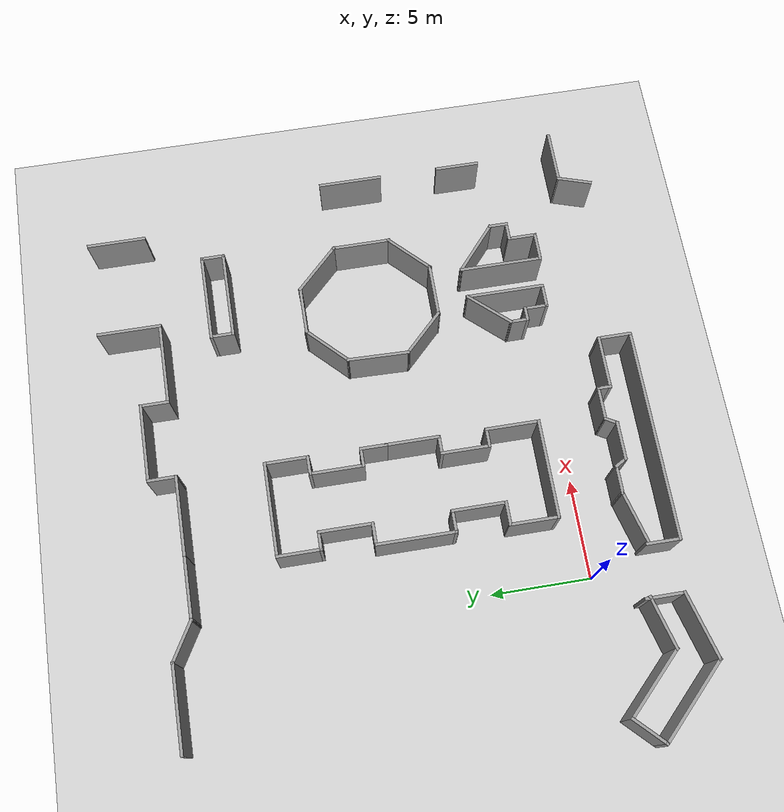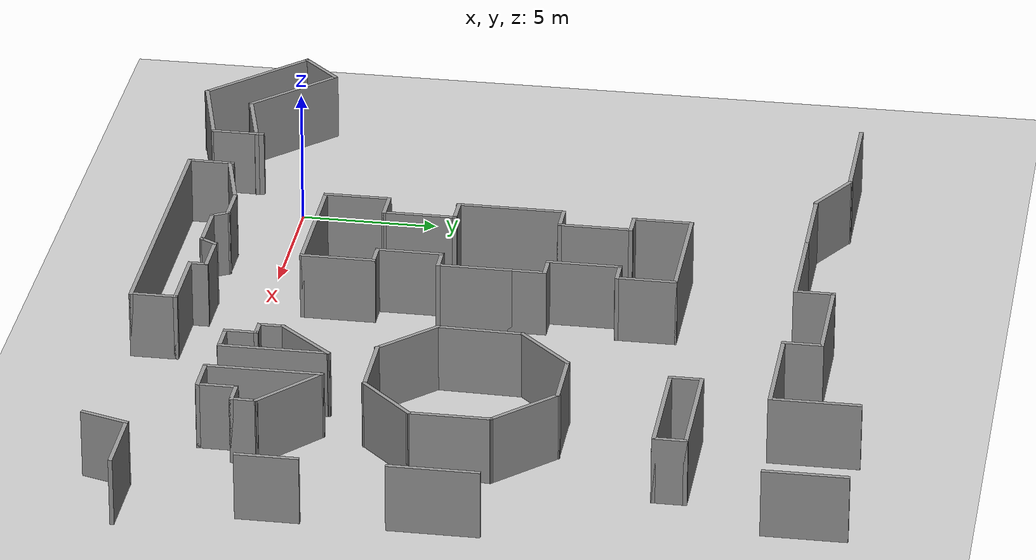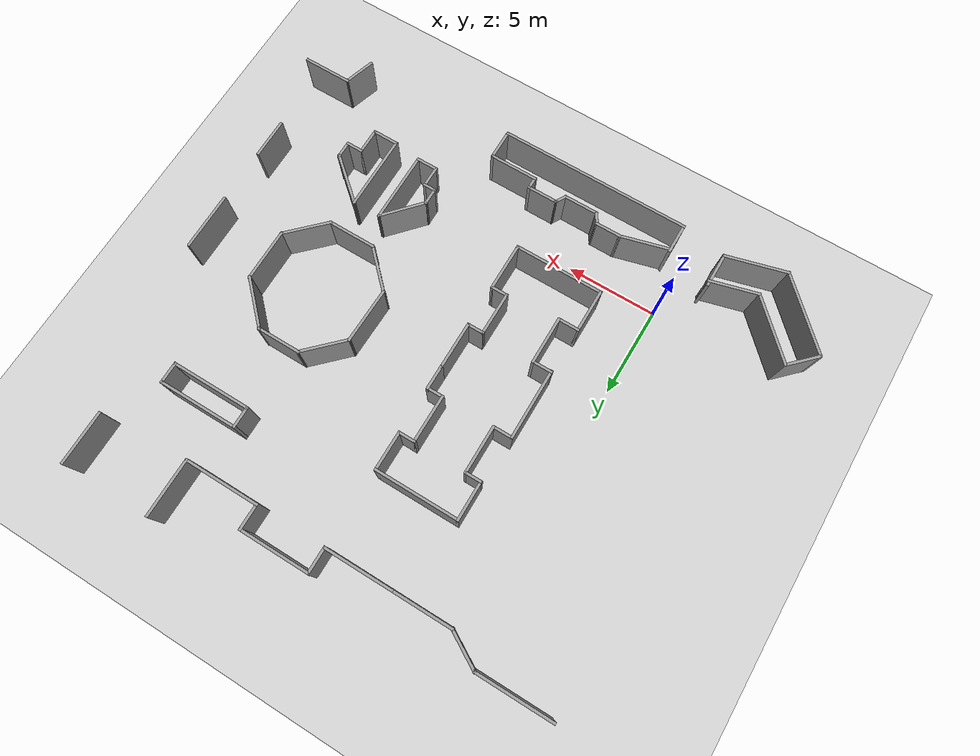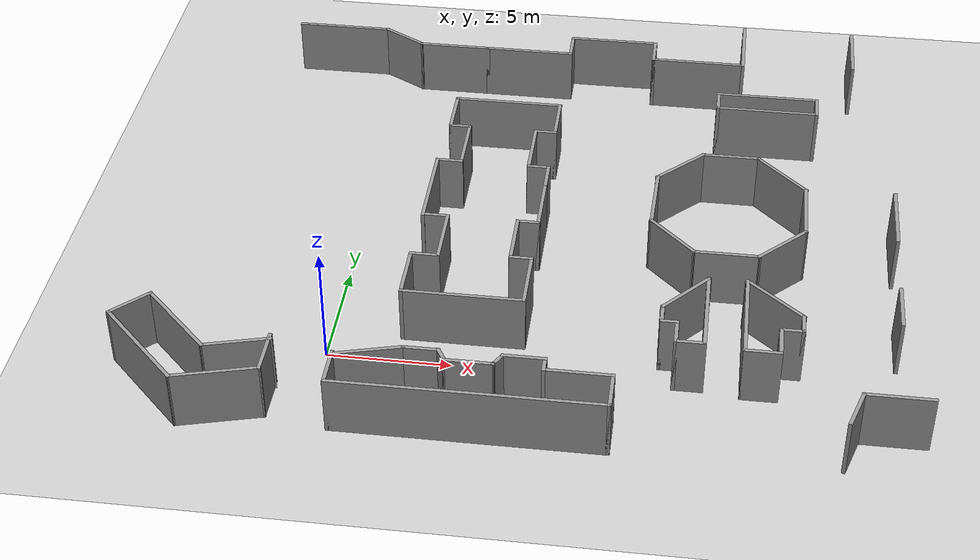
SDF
<sdf version="1.6">
 <world name="default">
  <model name="ground_plane">
   <static>1</static>
   <link name="link">
    <collision name="collision">
     <geometry><plane><normal>0 0 1</normal><size>100 100</size></plane></geometry>
     <surface><friction><ode><mu>100</mu><mu2>50</mu2></ode></friction></surface>
    </collision>
    <visual name="visual">
     <cast_shadows>0</cast_shadows>
     <geometry><plane><normal>0 0 1</normal><size>100 100</size></plane></geometry>
     <material>
      <script><uri>file://media/materials/scripts/gazebo.material</uri><name>Gazebo/Grey</name></script>
     </material>
    </visual>
   </link>
  </model>
  <model name="airport">
   <pose>30.6301 8.89323 0 0 -0 0</pose>
   <link name="Wall_10">
    <collision name="Wall_10_Collision">
     <geometry><box><size>5 0.15 2.5</size></box></geometry>
     <pose>0 0 1.25 0 -0 0</pose>
    </collision>
    <visual name="Wall_10_Visual">
     <pose>0 0 1.25 0 -0 0</pose>
     <geometry><box><size>5 0.15 2.5</size></box></geometry>
     <material>
      <script><uri>file://media/materials/scripts/gazebo.material</uri><name>Gazebo/Grey</name></script>
      <ambient>1 1 1 1</ambient>
     </material>
     <meta><layer>0</layer></meta>
    </visual>
    <pose>-25.3926 -7.51536 0 0 -0 3.14159</pose>
   </link>
   <link name="Wall_102">
    <collision name="Wall_102_Collision">
     <geometry><box><size>2.25 0.15 2.5</size></box></geometry>
     <pose>0 0 1.25 0 -0 0</pose>
    </collision>
    <visual name="Wall_102_Visual">
     <pose>0 0 1.25 0 -0 0</pose>
     <geometry><box><size>2.25 0.15 2.5</size></box></geometry>
     <material>
      <script><uri>file://media/materials/scripts/gazebo.material</uri><name>Gazebo/Grey</name></script>
      <ambient>1 1 1 1</ambient>
     </material>
     <meta><layer>0</layer></meta>
    </visual>
    <pose>-8.39356 -6.07807 0 0 -0 1.5708</pose>
   </link>
   <link name="Wall_106">
    <collision name="Wall_106_Collision">
     <geometry><box><size>3.25 0.15 2.5</size></box></geometry>
     <pose>0 0 1.25 0 -0 0</pose>
    </collision>
    <visual name="Wall_106_Visual">
     <pose>0 0 1.25 0 -0 0</pose>
     <geometry><box><size>3.25 0.15 2.5</size></box></geometry>
     <material>
      <script><uri>file://media/materials/scripts/gazebo.material</uri><name>Gazebo/Grey</name></script>
      <ambient>1 1 1 1</ambient>
     </material>
     <meta><layer>0</layer></meta>
    </visual>
    <pose>-8.39356 -0.378066 0 0 -0 1.5708</pose>
   </link>
   <link name="Wall_11">
    <collision name="Wall_11_Collision">
     <geometry><box><size>2.5 0.15 2.5</size></box></geometry>
     <pose>0 0 1.25 0 -0 0</pose>
    </collision>
    <visual name="Wall_11_Visual">
     <pose>0 0 1.25 0 -0 0</pose>
     <geometry><box><size>2.5 0.15 2.5</size></box></geometry>
     <material>
      <script><uri>file://media/materials/scripts/gazebo.material</uri><name>Gazebo/Grey</name></script>
      <ambient>1 1 1 1</ambient>
     </material>
     <meta><layer>0</layer></meta>
    </visual>
    <pose>-27.8176 -6.34036 0 0 -0 1.5708</pose>
   </link>
   <link name="Wall_112">
    <collision name="Wall_112_Collision">
     <geometry><box><size>1.25 0.15 2.5</size></box></geometry>
     <pose>0 0 1.25 0 -0 0</pose>
    </collision>
    <visual name="Wall_112_Visual">
     <pose>0 0 1.25 0 -0 0</pose>
     <geometry><box><size>1.25 0.15 2.5</size></box></geometry>
     <material>
      <script><uri>file://media/materials/scripts/gazebo.material</uri><name>Gazebo/Grey</name></script>
      <ambient>1 1 1 1</ambient>
     </material>
     <meta><layer>0</layer></meta>
    </visual>
    <pose>-15.9751 7.24364 0 0 0 -1.5708</pose>
   </link>
   <link name="Wall_113">
    <collision name="Wall_113_Collision">
     <geometry><box><size>4.5 0.15 2.5</size></box></geometry>
     <pose>0 0 1.25 0 -0 0</pose>
    </collision>
    <visual name="Wall_113_Visual">
     <pose>0 0 1.25 0 -0 0</pose>
     <geometry><box><size>4.5 0.15 2.5</size></box></geometry>
     <material>
      <script><uri>file://media/materials/scripts/gazebo.material</uri><name>Gazebo/Grey</name></script>
      <ambient>1 1 1 1</ambient>
     </material>
     <meta><layer>0</layer></meta>
    </visual>
    <pose>-13.8001 6.69364 0 0 -0 0</pose>
   </link>
   <link name="Wall_114">
    <collision name="Wall_114_Collision">
     <geometry><box><size>1.25 0.15 2.5</size></box></geometry>
     <pose>0 0 1.25 0 -0 0</pose>
    </collision>
    <visual name="Wall_114_Visual">
     <pose>0 0 1.25 0 -0 0</pose>
     <geometry><box><size>1.25 0.15 2.5</size></box></geometry>
     <material>
      <script><uri>file://media/materials/scripts/gazebo.material</uri><name>Gazebo/Grey</name></script>
      <ambient>1 1 1 1</ambient>
     </material>
     <meta><layer>0</layer></meta>
    </visual>
    <pose>-11.6251 7.24364 0 0 -0 1.5708</pose>
   </link>
   <link name="Wall_115">
    <collision name="Wall_115_Collision">
     <geometry><box><size>4.5 0.15 2.5</size></box></geometry>
     <pose>0 0 1.25 0 -0 0</pose>
    </collision>
    <visual name="Wall_115_Visual">
     <pose>0 0 1.25 0 -0 0</pose>
     <geometry><box><size>4.5 0.15 2.5</size></box></geometry>
     <material>
      <script><uri>file://media/materials/scripts/gazebo.material</uri><name>Gazebo/Grey</name></script>
      <ambient>1 1 1 1</ambient>
     </material>
     <meta><layer>0</layer></meta>
    </visual>
    <pose>-13.8001 7.79364 0 0 -0 3.14159</pose>
   </link>
   <link name="Wall_117">
    <collision name="Wall_117_Collision">
     <geometry><box><size>4 0.15 2.5</size></box></geometry>
     <pose>0 0 1.25 0 -0 0</pose>
    </collision>
    <visual name="Wall_117_Visual">
     <pose>0 0 1.25 0 -0 0</pose>
     <geometry><box><size>4 0.15 2.5</size></box></geometry>
     <material>
      <script><uri>file://media/materials/scripts/gazebo.material</uri><name>Gazebo/Grey</name></script>
      <ambient>1 1 1 1</ambient>
     </material>
     <meta><layer>0</layer></meta>
    </visual>
    <pose>-15.8825 -7.22328 0 0 0 -1.5708</pose>
   </link>
   <link name="Wall_118">
    <collision name="Wall_118_Collision">
     <geometry><box><size>1.25 0.15 2.5</size></box></geometry>
     <pose>0 0 1.25 0 -0 0</pose>
    </collision>
    <visual name="Wall_118_Visual">
     <pose>0 0 1.25 0 -0 0</pose>
     <geometry><box><size>1.25 0.15 2.5</size></box></geometry>
     <material>
      <script><uri>file://media/materials/scripts/gazebo.material</uri><name>Gazebo/Grey</name></script>
      <ambient>1 1 1 1</ambient>
     </material>
     <meta><layer>0</layer></meta>
    </visual>
    <pose>-16.4325 -9.14828 0 0 -0 3.14159</pose>
   </link>
   <link name="Wall_119">
    <collision name="Wall_119_Collision">
     <geometry><box><size>1.25 0.15 2.5</size></box></geometry>
     <pose>0 0 1.25 0 -0 0</pose>
    </collision>
    <visual name="Wall_119_Visual">
     <pose>0 0 1.25 0 -0 0</pose>
     <geometry><box><size>1.25 0.15 2.5</size></box></geometry>
     <material>
      <script><uri>file://media/materials/scripts/gazebo.material</uri><name>Gazebo/Grey</name></script>
      <ambient>1 1 1 1</ambient>
     </material>
     <meta><layer>0</layer></meta>
    </visual>
    <pose>-16.9825 -8.59828 0 0 -0 1.5708</pose>
   </link>
   <link name="Wall_12">
    <collision name="Wall_12_Collision">
     <geometry><box><size>1.25 0.15 2.5</size></box></geometry>
     <pose>0 0 1.25 0 -0 0</pose>
    </collision>
    <visual name="Wall_12_Visual">
     <pose>0 0 1.25 0 -0 0</pose>
     <geometry><box><size>1.25 0.15 2.5</size></box></geometry>
     <material>
      <script><uri>file://media/materials/scripts/gazebo.material</uri><name>Gazebo/Grey</name></script>
      <ambient>1 1 1 1</ambient>
     </material>
     <meta><layer>0</layer></meta>
    </visual>
    <pose>-27.2676 -5.16536 0 0 -0 0</pose>
   </link>
   <link name="Wall_120">
    <collision name="Wall_120_Collision">
     <geometry><box><size>0.75 0.15 2.5</size></box></geometry>
     <pose>0 0 1.25 0 -0 0</pose>
    </collision>
    <visual name="Wall_120_Visual">
     <pose>0 0 1.25 0 -0 0</pose>
     <geometry><box><size>0.75 0.15 2.5</size></box></geometry>
     <material>
      <script><uri>file://media/materials/scripts/gazebo.material</uri><name>Gazebo/Grey</name></script>
      <ambient>1 1 1 1</ambient>
     </material>
     <meta><layer>0</layer></meta>
    </visual>
    <pose>-17.2825 -8.04828 0 0 -0 3.14159</pose>
   </link>
   <link name="Wall_121">
    <collision name="Wall_121_Collision">
     <geometry><box><size>1 0.15 2.5</size></box></geometry>
     <pose>0 0 1.25 0 -0 0</pose>
    </collision>
    <visual name="Wall_121_Visual">
     <pose>0 0 1.25 0 -0 0</pose>
     <geometry><box><size>1 0.15 2.5</size></box></geometry>
     <material>
      <script><uri>file://media/materials/scripts/gazebo.material</uri><name>Gazebo/Grey</name></script>
      <ambient>1 1 1 1</ambient>
     </material>
     <meta><layer>0</layer></meta>
    </visual>
    <pose>-17.5825 -7.62328 0 0 -0 1.5708</pose>
   </link>
   <link name="Wall_122">
    <collision name="Wall_122_Collision">
     <geometry><box><size>2.69951 0.15 2.5</size></box></geometry>
     <pose>0 0 1.25 0 -0 0</pose>
    </collision>
    <visual name="Wall_122_Visual">
     <pose>0 0 1.25 0 -0 0</pose>
     <geometry><box><size>2.69951 0.15 2.5</size></box></geometry>
     <material>
      <script><uri>file://media/materials/scripts/gazebo.material</uri><name>Gazebo/Grey</name></script>
      <ambient>1 1 1 1</ambient>
     </material>
     <meta><layer>0</layer></meta>
    </visual>
    <pose>-16.7325 -6.24828 0 0 -0 0.840897</pose>
   </link>
   <link name="Wall_124">
    <collision name="Wall_124_Collision">
     <geometry><box><size>4.25 0.15 2.5</size></box></geometry>
     <pose>0 0 1.25 0 -0 0</pose>
    </collision>
    <visual name="Wall_124_Visual">
     <pose>0 0 1.25 0 -0 0</pose>
     <geometry><box><size>4.25 0.15 2.5</size></box></geometry>
     <material>
      <script><uri>file://media/materials/scripts/gazebo.material</uri><name>Gazebo/Grey</name></script>
      <ambient>1 1 1 1</ambient>
     </material>
     <meta><layer>0</layer></meta>
    </visual>
    <pose>-14.3559 -7.30202 0 0 0 -1.5708</pose>
   </link>
   <link name="Wall_125">
    <collision name="Wall_125_Collision">
     <geometry><box><size>1.5 0.15 2.5</size></box></geometry>
     <pose>0 0 1.25 0 -0 0</pose>
    </collision>
    <visual name="Wall_125_Visual">
     <pose>0 0 1.25 0 -0 0</pose>
     <geometry><box><size>1.5 0.15 2.5</size></box></geometry>
     <material>
      <script><uri>file://media/materials/scripts/gazebo.material</uri><name>Gazebo/Grey</name></script>
      <ambient>1 1 1 1</ambient>
     </material>
     <meta><layer>0</layer></meta>
    </visual>
    <pose>-13.6809 -9.35202 0 0 -0 0</pose>
   </link>
   <link name="Wall_126">
    <collision name="Wall_126_Collision">
     <geometry><box><size>1.5 0.15 2.5</size></box></geometry>
     <pose>0 0 1.25 0 -0 0</pose>
    </collision>
    <visual name="Wall_126_Visual">
     <pose>0 0 1.25 0 -0 0</pose>
     <geometry><box><size>1.5 0.15 2.5</size></box></geometry>
     <material>
      <script><uri>file://media/materials/scripts/gazebo.material</uri><name>Gazebo/Grey</name></script>
      <ambient>1 1 1 1</ambient>
     </material>
     <meta><layer>0</layer></meta>
    </visual>
    <pose>-13.0059 -8.67702 0 0 -0 1.5708</pose>
   </link>
   <link name="Wall_127">
    <collision name="Wall_127_Collision">
     <geometry><box><size>1 0.15 2.5</size></box></geometry>
     <pose>0 0 1.25 0 -0 0</pose>
    </collision>
    <visual name="Wall_127_Visual">
     <pose>0 0 1.25 0 -0 0</pose>
     <geometry><box><size>1 0.15 2.5</size></box></geometry>
     <material>
      <script><uri>file://media/materials/scripts/gazebo.material</uri><name>Gazebo/Grey</name></script>
      <ambient>1 1 1 1</ambient>
     </material>
     <meta><layer>0</layer></meta>
    </visual>
    <pose>-12.5809 -8.00202 0 0 -0 0</pose>
   </link>
   <link name="Wall_128">
    <collision name="Wall_128_Collision">
     <geometry><box><size>1 0.15 2.5</size></box></geometry>
     <pose>0 0 1.25 0 -0 0</pose>
    </collision>
    <visual name="Wall_128_Visual">
     <pose>0 0 1.25 0 -0 0</pose>
     <geometry><box><size>1 0.15 2.5</size></box></geometry>
     <material>
      <script><uri>file://media/materials/scripts/gazebo.material</uri><name>Gazebo/Grey</name></script>
      <ambient>1 1 1 1</ambient>
     </material>
     <meta><layer>0</layer></meta>
    </visual>
    <pose>-12.1559 -7.57702 0 0 -0 1.5708</pose>
   </link>
   <link name="Wall_129">
    <collision name="Wall_129_Collision">
     <geometry><box><size>3.05689 0.15 2.5</size></box></geometry>
     <pose>0 0 1.25 0 -0 0</pose>
    </collision>
    <visual name="Wall_129_Visual">
     <pose>0 0 1.25 0 -0 0</pose>
     <geometry><box><size>3.05689 0.15 2.5</size></box></geometry>
     <material>
      <script><uri>file://media/materials/scripts/gazebo.material</uri><name>Gazebo/Grey</name></script>
      <ambient>1 1 1 1</ambient>
     </material>
     <meta><layer>0</layer></meta>
    </visual>
    <pose>-13.2559 -6.20202 0 0 -0 2.42923</pose>
   </link>
   <link name="Wall_13">
    <collision name="Wall_13_Collision">
     <geometry><box><size>2.75 0.15 2.5</size></box></geometry>
     <pose>0 0 1.25 0 -0 0</pose>
    </collision>
    <visual name="Wall_13_Visual">
     <pose>0 0 1.25 0 -0 0</pose>
     <geometry><box><size>2.75 0.15 2.5</size></box></geometry>
     <material>
      <script><uri>file://media/materials/scripts/gazebo.material</uri><name>Gazebo/Grey</name></script>
      <ambient>1 1 1 1</ambient>
     </material>
     <meta><layer>0</layer></meta>
    </visual>
    <pose>-26.7176 -3.86536 0 0 -0 1.5708</pose>
   </link>
   <link name="Wall_131">
    <collision name="Wall_131_Collision">
     <geometry><box><size>2.75 0.15 2.5</size></box></geometry>
     <pose>0 0 1.25 0 -0 0</pose>
    </collision>
    <visual name="Wall_131_Visual">
     <pose>0 0 1.25 0 -0 0</pose>
     <geometry><box><size>2.75 0.15 2.5</size></box></geometry>
     <material>
      <script><uri>file://media/materials/scripts/gazebo.material</uri><name>Gazebo/Grey</name></script>
      <ambient>1 1 1 1</ambient>
     </material>
     <meta><layer>0</layer></meta>
    </visual>
    <pose>-8.67435 -11.2295 0 0 -0 0</pose>
   </link>
   <link name="Wall_141">
    <collision name="Wall_141_Collision">
     <geometry><box><size>1.82899 0.15 2.5</size></box></geometry>
     <pose>0 0 1.25 0 -0 0</pose>
    </collision>
    <visual name="Wall_141_Visual">
     <pose>0 0 1.25 0 -0 0</pose>
     <geometry><box><size>1.82899 0.15 2.5</size></box></geometry>
     <material>
      <script><uri>file://media/materials/scripts/gazebo.material</uri><name>Gazebo/Grey</name></script>
      <ambient>1 1 1 1</ambient>
     </material>
     <meta><layer>0</layer></meta>
    </visual>
    <pose>-10.2276 -12.0299 0 0 -0 1.26429</pose>
   </link>
   <link name="Wall_16">
    <collision name="Wall_16_Collision">
     <geometry><box><size>1.18061 0.15 2.5</size></box></geometry>
     <pose>0 0 1.25 0 -0 0</pose>
    </collision>
    <visual name="Wall_16_Visual">
     <pose>0 0 1.25 0 -0 0</pose>
     <geometry><box><size>1.18061 0.15 2.5</size></box></geometry>
     <material>
      <script><uri>file://media/materials/scripts/gazebo.material</uri><name>Gazebo/Grey</name></script>
      <ambient>1 1 1 1</ambient>
     </material>
     <meta><layer>0</layer></meta>
    </visual>
    <pose>-27.2329 -2.56536 0 0 -0 3.14159</pose>
   </link>
   <link name="Wall_17">
    <collision name="Wall_17_Collision">
     <geometry><box><size>4 0.15 2.5</size></box></geometry>
     <pose>0 0 1.25 0 -0 0</pose>
    </collision>
    <visual name="Wall_17_Visual">
     <pose>0 0 1.25 0 -0 0</pose>
     <geometry><box><size>4 0.15 2.5</size></box></geometry>
     <material>
      <script><uri>file://media/materials/scripts/gazebo.material</uri><name>Gazebo/Grey</name></script>
      <ambient>1 1 1 1</ambient>
     </material>
     <meta><layer>0</layer></meta>
    </visual>
    <pose>-27.7482 -0.663492 0 0 -0 1.5708</pose>
   </link>
   <link name="Wall_18">
    <collision name="Wall_18_Collision">
     <geometry><box><size>1.18061 0.15 2.5</size></box></geometry>
     <pose>0 0 1.25 0 -0 0</pose>
    </collision>
    <visual name="Wall_18_Visual">
     <pose>0 0 1.25 0 -0 0</pose>
     <geometry><box><size>1.18061 0.15 2.5</size></box></geometry>
     <material>
      <script><uri>file://media/materials/scripts/gazebo.material</uri><name>Gazebo/Grey</name></script>
      <ambient>1 1 1 1</ambient>
     </material>
     <meta><layer>0</layer></meta>
    </visual>
    <pose>-27.2329 1.28464 0 0 -0 0</pose>
   </link>
   <link name="Wall_19">
    <collision name="Wall_19_Collision">
     <geometry><box><size>2.75 0.15 2.5</size></box></geometry>
     <pose>0 0 1.25 0 -0 0</pose>
    </collision>
    <visual name="Wall_19_Visual">
     <pose>0 0 1.25 0 -0 0</pose>
     <geometry><box><size>2.75 0.15 2.5</size></box></geometry>
     <material>
      <script><uri>file://media/materials/scripts/gazebo.material</uri><name>Gazebo/Grey</name></script>
      <ambient>1 1 1 1</ambient>
     </material>
     <meta><layer>0</layer></meta>
    </visual>
    <pose>-26.7176 2.58464 0 0 -0 1.5708</pose>
   </link>
   <link name="Wall_231">
    <collision name="Wall_231_Collision">
     <geometry><box><size>2.25 0.15 2.5</size></box></geometry>
     <pose>0 0 1.25 0 -0 0</pose>
    </collision>
    <visual name="Wall_231_Visual">
     <pose>0 0 1.25 0 -0 0</pose>
     <geometry><box><size>2.25 0.15 2.5</size></box></geometry>
     <material>
      <script><uri>file://media/materials/scripts/gazebo.material</uri><name>Gazebo/Grey</name></script>
      <ambient>1 1 1 1</ambient>
     </material>
     <meta><layer>0</layer></meta>
    </visual>
    <pose>-30.7848 10.806 0 0 -0 2.61799</pose>
   </link>
   <link name="Wall_232">
    <collision name="Wall_232_Collision">
     <geometry><box><size>4.25 0.15 2.5</size></box></geometry>
     <pose>0 0 1.25 0 -0 0</pose>
    </collision>
    <visual name="Wall_232_Visual">
     <pose>0 0 1.25 0 -0 0</pose>
     <geometry><box><size>4.25 0.15 2.5</size></box></geometry>
     <material>
      <script><uri>file://media/materials/scripts/gazebo.material</uri><name>Gazebo/Grey</name></script>
      <ambient>1 1 1 1</ambient>
     </material>
     <meta><layer>0</layer></meta>
    </visual>
    <pose>-33.7441 11.331 0 0 -0 3.14159</pose>
   </link>
   <link name="Wall_27">
    <collision name="Wall_27_Collision">
     <geometry><box><size>2.75 0.15 2.5</size></box></geometry>
     <pose>0 0 1.25 0 -0 0</pose>
    </collision>
    <visual name="Wall_27_Visual">
     <pose>0 0 1.25 0 -0 0</pose>
     <geometry><box><size>2.75 0.15 2.5</size></box></geometry>
     <material>
      <script><uri>file://media/materials/scripts/gazebo.material</uri><name>Gazebo/Grey</name></script>
      <ambient>1 1 1 1</ambient>
     </material>
     <meta><layer>0</layer></meta>
    </visual>
    <pose>-23.8176 2.58464 0 0 0 -1.5708</pose>
   </link>
   <link name="Wall_28">
    <collision name="Wall_28_Collision">
     <geometry><box><size>1 0.15 2.5</size></box></geometry>
     <pose>0 0 1.25 0 -0 0</pose>
    </collision>
    <visual name="Wall_28_Visual">
     <pose>0 0 1.25 0 -0 0</pose>
     <geometry><box><size>1 0.15 2.5</size></box></geometry>
     <material>
      <script><uri>file://media/materials/scripts/gazebo.material</uri><name>Gazebo/Grey</name></script>
      <ambient>1 1 1 1</ambient>
     </material>
     <meta><layer>0</layer></meta>
    </visual>
    <pose>-23.3926 1.28464 0 0 -0 0</pose>
   </link>
   <link name="Wall_29">
    <collision name="Wall_29_Collision">
     <geometry><box><size>1.4 0.15 2.5</size></box></geometry>
     <pose>0 0 1.25 0 -0 0</pose>
    </collision>
    <visual name="Wall_29_Visual">
     <pose>0 0 1.25 0 -0 0</pose>
     <geometry><box><size>1.4 0.15 2.5</size></box></geometry>
     <material>
      <script><uri>file://media/materials/scripts/gazebo.material</uri><name>Gazebo/Grey</name></script>
      <ambient>1 1 1 1</ambient>
     </material>
     <meta><layer>0</layer></meta>
    </visual>
    <pose>-22.9676 0.659639 0 0 0 -1.5708</pose>
   </link>
   <link name="Wall_298">
    <collision name="Wall_298_Collision">
     <geometry><box><size>2.75 0.15 2.5</size></box></geometry>
     <pose>0 0 1.25 0 -0 0</pose>
    </collision>
    <visual name="Wall_298_Visual">
     <pose>0 0 1.25 0 -0 0</pose>
     <geometry><box><size>2.75 0.15 2.5</size></box></geometry>
     <material>
      <script><uri>file://media/materials/scripts/gazebo.material</uri><name>Gazebo/Grey</name></script>
      <ambient>1 1 1 1</ambient>
     </material>
     <meta><layer>0</layer></meta>
    </visual>
    <pose>-33.4958 -11.267 0 0 0 -2.87979</pose>
   </link>
   <link name="Wall_299">
    <collision name="Wall_299_Collision">
     <geometry><box><size>4 0.15 2.5</size></box></geometry>
     <pose>0 0 1.25 0 -0 0</pose>
    </collision>
    <visual name="Wall_299_Visual">
     <pose>0 0 1.25 0 -0 0</pose>
     <geometry><box><size>4 0.15 2.5</size></box></geometry>
     <material>
      <script><uri>file://media/materials/scripts/gazebo.material</uri><name>Gazebo/Grey</name></script>
      <ambient>1 1 1 1</ambient>
     </material>
     <meta><layer>0</layer></meta>
    </visual>
    <pose>-36.1127 -10.2423 0 0 -0 2.35619</pose>
   </link>
   <link name="Wall_300">
    <collision name="Wall_300_Collision">
     <geometry><box><size>2 0.15 2.5</size></box></geometry>
     <pose>0 0 1.25 0 -0 0</pose>
    </collision>
    <visual name="Wall_300_Visual">
     <pose>0 0 1.25 0 -0 0</pose>
     <geometry><box><size>2 0.15 2.5</size></box></geometry>
     <material>
      <script><uri>file://media/materials/scripts/gazebo.material</uri><name>Gazebo/Grey</name></script>
      <ambient>1 1 1 1</ambient>
     </material>
     <meta><layer>0</layer></meta>
    </visual>
    <pose>-38.128 -9.53522 0 0 0 -2.35619</pose>
   </link>
   <link name="Wall_301">
    <collision name="Wall_301_Collision">
     <geometry><box><size>4.75 0.15 2.5</size></box></geometry>
     <pose>0 0 1.25 0 -0 0</pose>
    </collision>
    <visual name="Wall_301_Visual">
     <pose>0 0 1.25 0 -0 0</pose>
     <geometry><box><size>4.75 0.15 2.5</size></box></geometry>
     <material>
      <script><uri>file://media/materials/scripts/gazebo.material</uri><name>Gazebo/Grey</name></script>
      <ambient>1 1 1 1</ambient>
     </material>
     <meta><layer>0</layer></meta>
    </visual>
    <pose>-37.1557 -11.8156 0 0 0 -0.785398</pose>
   </link>
   <link name="Wall_302">
    <collision name="Wall_302_Collision">
     <geometry><box><size>3.5 0.15 2.5</size></box></geometry>
     <pose>0 0 1.25 0 -0 0</pose>
    </collision>
    <visual name="Wall_302_Visual">
     <pose>0 0 1.25 0 -0 0</pose>
     <geometry><box><size>3.5 0.15 2.5</size></box></geometry>
     <material>
      <script><uri>file://media/materials/scripts/gazebo.material</uri><name>Gazebo/Grey</name></script>
      <ambient>1 1 1 1</ambient>
     </material>
     <meta><layer>0</layer></meta>
    </visual>
    <pose>-33.9114 -13.0085 0 0 -0 0.261799</pose>
   </link>
   <link name="Wall_303">
    <collision name="Wall_303_Collision">
     <geometry><box><size>2 0.15 2.5</size></box></geometry>
     <pose>0 0 1.25 0 -0 0</pose>
    </collision>
    <visual name="Wall_303_Visual">
     <pose>0 0 1.25 0 -0 0</pose>
     <geometry><box><size>2 0.15 2.5</size></box></geometry>
     <material>
      <script><uri>file://media/materials/scripts/gazebo.material</uri><name>Gazebo/Grey</name></script>
      <ambient>1 1 1 1</ambient>
     </material>
     <meta><layer>0</layer></meta>
    </visual>
    <pose>-32.2935 -11.6499 0 0 -0 1.5708</pose>
   </link>
   <link name="Wall_31">
    <collision name="Wall_31_Collision">
     <geometry><box><size>1 0.15 2.5</size></box></geometry>
     <pose>0 0 1.25 0 -0 0</pose>
    </collision>
    <visual name="Wall_31_Visual">
     <pose>0 0 1.25 0 -0 0</pose>
     <geometry><box><size>1 0.15 2.5</size></box></geometry>
     <material>
      <script><uri>file://media/materials/scripts/gazebo.material</uri><name>Gazebo/Grey</name></script>
      <ambient>1 1 1 1</ambient>
     </material>
     <meta><layer>0</layer></meta>
    </visual>
    <pose>-27.1426 3.88464 0 0 -0 3.14159</pose>
   </link>
   <link name="Wall_32">
    <collision name="Wall_32_Collision">
     <geometry><box><size>2.25 0.15 2.5</size></box></geometry>
     <pose>0 0 1.25 0 -0 0</pose>
    </collision>
    <visual name="Wall_32_Visual">
     <pose>0 0 1.25 0 -0 0</pose>
     <geometry><box><size>2.25 0.15 2.5</size></box></geometry>
     <material>
      <script><uri>file://media/materials/scripts/gazebo.material</uri><name>Gazebo/Grey</name></script>
      <ambient>1 1 1 1</ambient>
     </material>
     <meta><layer>0</layer></meta>
    </visual>
    <pose>-27.5676 4.93464 0 0 -0 1.5708</pose>
   </link>
   <link name="Wall_34">
    <collision name="Wall_34_Collision">
     <geometry><box><size>1 0.15 2.5</size></box></geometry>
     <pose>0 0 1.25 0 -0 0</pose>
    </collision>
    <visual name="Wall_34_Visual">
     <pose>0 0 1.25 0 -0 0</pose>
     <geometry><box><size>1 0.15 2.5</size></box></geometry>
     <material>
      <script><uri>file://media/materials/scripts/gazebo.material</uri><name>Gazebo/Grey</name></script>
      <ambient>1 1 1 1</ambient>
     </material>
     <meta><layer>0</layer></meta>
    </visual>
    <pose>-23.3926 3.88464 0 0 -0 0</pose>
   </link>
   <link name="Wall_35">
    <collision name="Wall_35_Collision">
     <geometry><box><size>2.25 0.15 2.5</size></box></geometry>
     <pose>0 0 1.25 0 -0 0</pose>
    </collision>
    <visual name="Wall_35_Visual">
     <pose>0 0 1.25 0 -0 0</pose>
     <geometry><box><size>2.25 0.15 2.5</size></box></geometry>
     <material>
      <script><uri>file://media/materials/scripts/gazebo.material</uri><name>Gazebo/Grey</name></script>
      <ambient>1 1 1 1</ambient>
     </material>
     <meta><layer>0</layer></meta>
    </visual>
    <pose>-22.9676 4.93464 0 0 -0 1.5708</pose>
   </link>
   <link name="Wall_37">
    <collision name="Wall_37_Collision">
     <geometry><box><size>4.75 0.15 2.5</size></box></geometry>
     <pose>0 0 1.25 0 -0 0</pose>
    </collision>
    <visual name="Wall_37_Visual">
     <pose>0 0 1.25 0 -0 0</pose>
     <geometry><box><size>4.75 0.15 2.5</size></box></geometry>
     <material>
      <script><uri>file://media/materials/scripts/gazebo.material</uri><name>Gazebo/Grey</name></script>
      <ambient>1 1 1 1</ambient>
     </material>
     <meta><layer>0</layer></meta>
    </visual>
    <pose>-25.2676 5.98464 0 0 -0 0</pose>
   </link>
   <link name="Wall_42">
    <collision name="Wall_42_Collision">
     <geometry><box><size>2.75 0.15 2.5</size></box></geometry>
     <pose>0 0 1.25 0 -0 0</pose>
    </collision>
    <visual name="Wall_42_Visual">
     <pose>0 0 1.25 0 -0 0</pose>
     <geometry><box><size>2.75 0.15 2.5</size></box></geometry>
     <material>
      <script><uri>file://media/materials/scripts/gazebo.material</uri><name>Gazebo/Grey</name></script>
      <ambient>1 1 1 1</ambient>
     </material>
     <meta><layer>0</layer></meta>
    </visual>
    <pose>-17.4593 -2.74855 0 0 0 -0.785398</pose>
   </link>
   <link name="Wall_43">
    <collision name="Wall_43_Collision">
     <geometry><box><size>2.75 0.15 2.5</size></box></geometry>
     <pose>0 0 1.25 0 -0 0</pose>
    </collision>
    <visual name="Wall_43_Visual">
     <pose>0 0 1.25 0 -0 0</pose>
     <geometry><box><size>2.75 0.15 2.5</size></box></geometry>
     <material>
      <script><uri>file://media/materials/scripts/gazebo.material</uri><name>Gazebo/Grey</name></script>
      <ambient>1 1 1 1</ambient>
     </material>
     <meta><layer>0</layer></meta>
    </visual>
    <pose>-15.2401 -3.66779 0 0 -0 0</pose>
   </link>
   <link name="Wall_44">
    <collision name="Wall_44_Collision">
     <geometry><box><size>2.75 0.15 2.5</size></box></geometry>
     <pose>0 0 1.25 0 -0 0</pose>
    </collision>
    <visual name="Wall_44_Visual">
     <pose>0 0 1.25 0 -0 0</pose>
     <geometry><box><size>2.75 0.15 2.5</size></box></geometry>
     <material>
      <script><uri>file://media/materials/scripts/gazebo.material</uri><name>Gazebo/Grey</name></script>
      <ambient>1 1 1 1</ambient>
     </material>
     <meta><layer>0</layer></meta>
    </visual>
    <pose>-13.0209 -2.74855 0 0 -0 0.785398</pose>
   </link>
   <link name="Wall_45">
    <collision name="Wall_45_Collision">
     <geometry><box><size>3 0.15 2.5</size></box></geometry>
     <pose>0 0 1.25 0 -0 0</pose>
    </collision>
    <visual name="Wall_45_Visual">
     <pose>0 0 1.25 0 -0 0</pose>
     <geometry><box><size>3 0.15 2.5</size></box></geometry>
     <material>
      <script><uri>file://media/materials/scripts/gazebo.material</uri><name>Gazebo/Grey</name></script>
      <ambient>1 1 1 1</ambient>
     </material>
     <meta><layer>0</layer></meta>
    </visual>
    <pose>-12.1016 -0.40431 0 0 -0 1.5708</pose>
   </link>
   <link name="Wall_46">
    <collision name="Wall_46_Collision">
     <geometry><box><size>3 0.15 2.5</size></box></geometry>
     <pose>0 0 1.25 0 -0 0</pose>
    </collision>
    <visual name="Wall_46_Visual">
     <pose>0 0 1.25 0 -0 0</pose>
     <geometry><box><size>3 0.15 2.5</size></box></geometry>
     <material>
      <script><uri>file://media/materials/scripts/gazebo.material</uri><name>Gazebo/Grey</name></script>
      <ambient>1 1 1 1</ambient>
     </material>
     <meta><layer>0</layer></meta>
    </visual>
    <pose>-13.1093 2.02832 0 0 -0 2.35619</pose>
   </link>
   <link name="Wall_47">
    <collision name="Wall_47_Collision">
     <geometry><box><size>2.5 0.15 2.5</size></box></geometry>
     <pose>0 0 1.25 0 -0 0</pose>
    </collision>
    <visual name="Wall_47_Visual">
     <pose>0 0 1.25 0 -0 0</pose>
     <geometry><box><size>2.5 0.15 2.5</size></box></geometry>
     <material>
      <script><uri>file://media/materials/scripts/gazebo.material</uri><name>Gazebo/Grey</name></script>
      <ambient>1 1 1 1</ambient>
     </material>
     <meta><layer>0</layer></meta>
    </visual>
    <pose>-15.2919 3.03594 0 0 -0 3.14159</pose>
   </link>
   <link name="Wall_48">
    <collision name="Wall_48_Collision">
     <geometry><box><size>2.75 0.15 2.5</size></box></geometry>
     <pose>0 0 1.25 0 -0 0</pose>
    </collision>
    <visual name="Wall_48_Visual">
     <pose>0 0 1.25 0 -0 0</pose>
     <geometry><box><size>2.75 0.15 2.5</size></box></geometry>
     <material>
      <script><uri>file://media/materials/scripts/gazebo.material</uri><name>Gazebo/Grey</name></script>
      <ambient>1 1 1 1</ambient>
     </material>
     <meta><layer>0</layer></meta>
    </visual>
    <pose>-17.3861 2.11671 0 0 0 -2.35619</pose>
   </link>
   <link name="Wall_5">
    <collision name="Wall_5_Collision">
     <geometry><box><size>2.75 0.15 2.5</size></box></geometry>
     <pose>0 0 1.25 0 -0 0</pose>
    </collision>
    <visual name="Wall_5_Visual">
     <pose>0 0 1.25 0 -0 0</pose>
     <geometry><box><size>2.75 0.15 2.5</size></box></geometry>
     <material>
      <script><uri>file://media/materials/scripts/gazebo.material</uri><name>Gazebo/Grey</name></script>
      <ambient>1 1 1 1</ambient>
     </material>
     <meta><layer>0</layer></meta>
    </visual>
    <pose>-22.9676 -1.26536 0 0 0 -1.5708</pose>
   </link>
   <link name="Wall_50">
    <collision name="Wall_50_Collision">
     <geometry><box><size>3.17766 0.15 2.5</size></box></geometry>
     <pose>0 0 1.25 0 -0 0</pose>
    </collision>
    <visual name="Wall_50_Visual">
     <pose>0 0 1.25 0 -0 0</pose>
     <geometry><box><size>3.17766 0.15 2.5</size></box></geometry>
     <material>
      <script><uri>file://media/materials/scripts/gazebo.material</uri><name>Gazebo/Grey</name></script>
      <ambient>1 1 1 1</ambient>
     </material>
     <meta><layer>0</layer></meta>
    </visual>
    <pose>-18.342 -0.315922 0 0 0 -1.59498</pose>
   </link>
   <link name="Wall_52">
    <collision name="Wall_52_Collision">
     <geometry><box><size>3.25 0.15 2.5</size></box></geometry>
     <pose>0 0 1.25 0 -0 0</pose>
    </collision>
    <visual name="Wall_52_Visual">
     <pose>0 0 1.25 0 -0 0</pose>
     <geometry><box><size>3.25 0.15 2.5</size></box></geometry>
     <material>
      <script><uri>file://media/materials/scripts/gazebo.material</uri><name>Gazebo/Grey</name></script>
      <ambient>1 1 1 1</ambient>
     </material>
     <meta><layer>0</layer></meta>
    </visual>
    <pose>-28.3254 10.281 0 0 -0 0</pose>
   </link>
   <link name="Wall_53">
    <collision name="Wall_53_Collision">
     <geometry><box><size>4 0.15 2.5</size></box></geometry>
     <pose>0 0 1.25 0 -0 0</pose>
    </collision>
    <visual name="Wall_53_Visual">
     <pose>0 0 1.25 0 -0 0</pose>
     <geometry><box><size>4 0.15 2.5</size></box></geometry>
     <material>
      <script><uri>file://media/materials/scripts/gazebo.material</uri><name>Gazebo/Grey</name></script>
      <ambient>1 1 1 1</ambient>
     </material>
     <meta><layer>0</layer></meta>
    </visual>
    <pose>-24.8504 10.281 0 0 -0 0</pose>
   </link>
   <link name="Wall_54">
    <collision name="Wall_54_Collision">
     <geometry><box><size>1.5 0.15 2.5</size></box></geometry>
     <pose>0 0 1.25 0 -0 0</pose>
    </collision>
    <visual name="Wall_54_Visual">
     <pose>0 0 1.25 0 -0 0</pose>
     <geometry><box><size>1.5 0.15 2.5</size></box></geometry>
     <material>
      <script><uri>file://media/materials/scripts/gazebo.material</uri><name>Gazebo/Grey</name></script>
      <ambient>1 1 1 1</ambient>
     </material>
     <meta><layer>0</layer></meta>
    </visual>
    <pose>-22.9254 10.956 0 0 -0 1.5708</pose>
   </link>
   <link name="Wall_55">
    <collision name="Wall_55_Collision">
     <geometry><box><size>4 0.15 2.5</size></box></geometry>
     <pose>0 0 1.25 0 -0 0</pose>
    </collision>
    <visual name="Wall_55_Visual">
     <pose>0 0 1.25 0 -0 0</pose>
     <geometry><box><size>4 0.15 2.5</size></box></geometry>
     <material>
      <script><uri>file://media/materials/scripts/gazebo.material</uri><name>Gazebo/Grey</name></script>
      <ambient>1 1 1 1</ambient>
     </material>
     <meta><layer>0</layer></meta>
    </visual>
    <pose>-21.0004 11.631 0 0 -0 0</pose>
   </link>
   <link name="Wall_56">
    <collision name="Wall_56_Collision">
     <geometry><box><size>1.5 0.15 2.5</size></box></geometry>
     <pose>0 0 1.25 0 -0 0</pose>
    </collision>
    <visual name="Wall_56_Visual">
     <pose>0 0 1.25 0 -0 0</pose>
     <geometry><box><size>1.5 0.15 2.5</size></box></geometry>
     <material>
      <script><uri>file://media/materials/scripts/gazebo.material</uri><name>Gazebo/Grey</name></script>
      <ambient>1 1 1 1</ambient>
     </material>
     <meta><layer>0</layer></meta>
    </visual>
    <pose>-19.0754 10.956 0 0 0 -1.5708</pose>
   </link>
   <link name="Wall_57">
    <collision name="Wall_57_Collision">
     <geometry><box><size>4.25 0.15 2.5</size></box></geometry>
     <pose>0 0 1.25 0 -0 0</pose>
    </collision>
    <visual name="Wall_57_Visual">
     <pose>0 0 1.25 0 -0 0</pose>
     <geometry><box><size>4.25 0.15 2.5</size></box></geometry>
     <material>
      <script><uri>file://media/materials/scripts/gazebo.material</uri><name>Gazebo/Grey</name></script>
      <ambient>1 1 1 1</ambient>
     </material>
     <meta><layer>0</layer></meta>
    </visual>
    <pose>-17.0254 10.281 0 0 -0 0</pose>
   </link>
   <link name="Wall_58">
    <collision name="Wall_58_Collision">
     <geometry><box><size>3.25 0.15 2.5</size></box></geometry>
     <pose>0 0 1.25 0 -0 0</pose>
    </collision>
    <visual name="Wall_58_Visual">
     <pose>0 0 1.25 0 -0 0</pose>
     <geometry><box><size>3.25 0.15 2.5</size></box></geometry>
     <material>
      <script><uri>file://media/materials/scripts/gazebo.material</uri><name>Gazebo/Grey</name></script>
      <ambient>1 1 1 1</ambient>
     </material>
     <meta><layer>0</layer></meta>
    </visual>
    <pose>-14.9754 11.831 0 0 -0 1.5708</pose>
   </link>
   <link name="Wall_6">
    <collision name="Wall_6_Collision">
     <geometry><box><size>1 0.15 2.5</size></box></geometry>
     <pose>0 0 1.25 0 -0 0</pose>
    </collision>
    <visual name="Wall_6_Visual">
     <pose>0 0 1.25 0 -0 0</pose>
     <geometry><box><size>1 0.15 2.5</size></box></geometry>
     <material>
      <script><uri>file://media/materials/scripts/gazebo.material</uri><name>Gazebo/Grey</name></script>
      <ambient>1 1 1 1</ambient>
     </material>
     <meta><layer>0</layer></meta>
    </visual>
    <pose>-23.3926 -2.56536 0 0 -0 3.14159</pose>
   </link>
   <link name="Wall_60">
    <collision name="Wall_60_Collision">
     <geometry><box><size>3 0.15 2.5</size></box></geometry>
     <pose>0 0 1.25 0 -0 0</pose>
    </collision>
    <visual name="Wall_60_Visual">
     <pose>0 0 1.25 0 -0 0</pose>
     <geometry><box><size>3 0.15 2.5</size></box></geometry>
     <material>
      <script><uri>file://media/materials/scripts/gazebo.material</uri><name>Gazebo/Grey</name></script>
      <ambient>1 1 1 1</ambient>
     </material>
     <meta><layer>0</layer></meta>
    </visual>
    <pose>-9.97848 12.048 0 0 0 -1.5708</pose>
   </link>
   <link name="Wall_7">
    <collision name="Wall_7_Collision">
     <geometry><box><size>2.5 0.15 2.5</size></box></geometry>
     <pose>0 0 1.25 0 -0 0</pose>
    </collision>
    <visual name="Wall_7_Visual">
     <pose>0 0 1.25 0 -0 0</pose>
     <geometry><box><size>2.5 0.15 2.5</size></box></geometry>
     <material>
      <script><uri>file://media/materials/scripts/gazebo.material</uri><name>Gazebo/Grey</name></script>
      <ambient>1 1 1 1</ambient>
     </material>
     <meta><layer>0</layer></meta>
    </visual>
    <pose>-23.8176 -3.74036 0 0 0 -1.5708</pose>
   </link>
   <link name="Wall_73">
    <collision name="Wall_73_Collision">
     <geometry><box><size>1.75 0.15 2.5</size></box></geometry>
     <pose>0 0 1.25 0 -0 0</pose>
    </collision>
    <visual name="Wall_73_Visual">
     <pose>0 0 1.25 0 -0 0</pose>
     <geometry><box><size>1.75 0.15 2.5</size></box></geometry>
     <material>
      <script><uri>file://media/materials/scripts/gazebo.material</uri><name>Gazebo/Grey</name></script>
      <ambient>1 1 1 1</ambient>
     </material>
     <meta><layer>0</layer></meta>
    </visual>
    <pose>-29.769 -12.1715 0 0 0 -1.5708</pose>
   </link>
   <link name="Wall_74">
    <collision name="Wall_74_Collision">
     <geometry><box><size>10.75 0.15 2.5</size></box></geometry>
     <pose>0 0 1.25 0 -0 0</pose>
    </collision>
    <visual name="Wall_74_Visual">
     <pose>0 0 1.25 0 -0 0</pose>
     <geometry><box><size>10.75 0.15 2.5</size></box></geometry>
     <material>
      <script><uri>file://media/materials/scripts/gazebo.material</uri><name>Gazebo/Grey</name></script>
      <ambient>1 1 1 1</ambient>
     </material>
     <meta><layer>0</layer></meta>
    </visual>
    <pose>-24.469 -12.9715 0 0 -0 0</pose>
   </link>
   <link name="Wall_75">
    <collision name="Wall_75_Collision">
     <geometry><box><size>1.75 0.15 2.5</size></box></geometry>
     <pose>0 0 1.25 0 -0 0</pose>
    </collision>
    <visual name="Wall_75_Visual">
     <pose>0 0 1.25 0 -0 0</pose>
     <geometry><box><size>1.75 0.15 2.5</size></box></geometry>
     <material>
      <script><uri>file://media/materials/scripts/gazebo.material</uri><name>Gazebo/Grey</name></script>
      <ambient>1 1 1 1</ambient>
     </material>
     <meta><layer>0</layer></meta>
    </visual>
    <pose>-19.169 -12.1715 0 0 -0 1.5708</pose>
   </link>
   <link name="Wall_76">
    <collision name="Wall_76_Collision">
     <geometry><box><size>2.75 0.15 2.5</size></box></geometry>
     <pose>0 0 1.25 0 -0 0</pose>
    </collision>
    <visual name="Wall_76_Visual">
     <pose>0 0 1.25 0 -0 0</pose>
     <geometry><box><size>2.75 0.15 2.5</size></box></geometry>
     <material>
      <script><uri>file://media/materials/scripts/gazebo.material</uri><name>Gazebo/Grey</name></script>
      <ambient>1 1 1 1</ambient>
     </material>
     <meta><layer>0</layer></meta>
    </visual>
    <pose>-20.469 -11.3715 0 0 -0 3.14159</pose>
   </link>
   <link name="Wall_77">
    <collision name="Wall_77_Collision">
     <geometry><box><size>0.75 0.15 2.5</size></box></geometry>
     <pose>0 0 1.25 0 -0 0</pose>
    </collision>
    <visual name="Wall_77_Visual">
     <pose>0 0 1.25 0 -0 0</pose>
     <geometry><box><size>0.75 0.15 2.5</size></box></geometry>
     <material>
      <script><uri>file://media/materials/scripts/gazebo.material</uri><name>Gazebo/Grey</name></script>
      <ambient>1 1 1 1</ambient>
     </material>
     <meta><layer>0</layer></meta>
    </visual>
    <pose>-21.769 -11.0715 0 0 -0 1.5708</pose>
   </link>
   <link name="Wall_78">
    <collision name="Wall_78_Collision">
     <geometry><box><size>1.75 0.15 2.5</size></box></geometry>
     <pose>0 0 1.25 0 -0 0</pose>
    </collision>
    <visual name="Wall_78_Visual">
     <pose>0 0 1.25 0 -0 0</pose>
     <geometry><box><size>1.75 0.15 2.5</size></box></geometry>
     <material>
      <script><uri>file://media/materials/scripts/gazebo.material</uri><name>Gazebo/Grey</name></script>
      <ambient>1 1 1 1</ambient>
     </material>
     <meta><layer>0</layer></meta>
    </visual>
    <pose>-22.569 -10.7715 0 0 -0 3.14159</pose>
   </link>
   <link name="Wall_79">
    <collision name="Wall_79_Collision">
     <geometry><box><size>0.75 0.15 2.5</size></box></geometry>
     <pose>0 0 1.25 0 -0 0</pose>
    </collision>
    <visual name="Wall_79_Visual">
     <pose>0 0 1.25 0 -0 0</pose>
     <geometry><box><size>0.75 0.15 2.5</size></box></geometry>
     <material>
      <script><uri>file://media/materials/scripts/gazebo.material</uri><name>Gazebo/Grey</name></script>
      <ambient>1 1 1 1</ambient>
     </material>
     <meta><layer>0</layer></meta>
    </visual>
    <pose>-23.519 -11.0313 0 0 0 -2.0944</pose>
   </link>
   <link name="Wall_8">
    <collision name="Wall_8_Collision">
     <geometry><box><size>1 0.15 2.5</size></box></geometry>
     <pose>0 0 1.25 0 -0 0</pose>
    </collision>
    <visual name="Wall_8_Visual">
     <pose>0 0 1.25 0 -0 0</pose>
     <geometry><box><size>1 0.15 2.5</size></box></geometry>
     <material>
      <script><uri>file://media/materials/scripts/gazebo.material</uri><name>Gazebo/Grey</name></script>
      <ambient>1 1 1 1</ambient>
     </material>
     <meta><layer>0</layer></meta>
    </visual>
    <pose>-23.3926 -4.91536 0 0 -0 0</pose>
   </link>
   <link name="Wall_80">
    <collision name="Wall_80_Collision">
     <geometry><box><size>2 0.15 2.5</size></box></geometry>
     <pose>0 0 1.25 0 -0 0</pose>
    </collision>
    <visual name="Wall_80_Visual">
     <pose>0 0 1.25 0 -0 0</pose>
     <geometry><box><size>2 0.15 2.5</size></box></geometry>
     <material>
      <script><uri>file://media/materials/scripts/gazebo.material</uri><name>Gazebo/Grey</name></script>
      <ambient>1 1 1 1</ambient>
     </material>
     <meta><layer>0</layer></meta>
    </visual>
    <pose>-24.594 -11.2912 0 0 -0 3.14159</pose>
   </link>
   <link name="Wall_81">
    <collision name="Wall_81_Collision">
     <geometry><box><size>0.75 0.15 2.5</size></box></geometry>
     <pose>0 0 1.25 0 -0 0</pose>
    </collision>
    <visual name="Wall_81_Visual">
     <pose>0 0 1.25 0 -0 0</pose>
     <geometry><box><size>0.75 0.15 2.5</size></box></geometry>
     <material>
      <script><uri>file://media/materials/scripts/gazebo.material</uri><name>Gazebo/Grey</name></script>
      <ambient>1 1 1 1</ambient>
     </material>
     <meta><layer>0</layer></meta>
    </visual>
    <pose>-25.669 -11.0313 0 0 -0 2.0944</pose>
   </link>
   <link name="Wall_82">
    <collision name="Wall_82_Collision">
     <geometry><box><size>1.5 0.15 2.5</size></box></geometry>
     <pose>0 0 1.25 0 -0 0</pose>
    </collision>
    <visual name="Wall_82_Visual">
     <pose>0 0 1.25 0 -0 0</pose>
     <geometry><box><size>1.5 0.15 2.5</size></box></geometry>
     <material>
      <script><uri>file://media/materials/scripts/gazebo.material</uri><name>Gazebo/Grey</name></script>
      <ambient>1 1 1 1</ambient>
     </material>
     <meta><layer>0</layer></meta>
    </visual>
    <pose>-26.494 -10.7715 0 0 -0 3.14159</pose>
   </link>
   <link name="Wall_83">
    <collision name="Wall_83_Collision">
     <geometry><box><size>2.75 0.15 2.5</size></box></geometry>
     <pose>0 0 1.25 0 -0 0</pose>
    </collision>
    <visual name="Wall_83_Visual">
     <pose>0 0 1.25 0 -0 0</pose>
     <geometry><box><size>2.75 0.15 2.5</size></box></geometry>
     <material>
      <script><uri>file://media/materials/scripts/gazebo.material</uri><name>Gazebo/Grey</name></script>
      <ambient>1 1 1 1</ambient>
     </material>
     <meta><layer>0</layer></meta>
    </visual>
    <pose>-28.4247 -11.108 0 0 0 -2.87979</pose>
   </link>
   <link name="Wall_9">
    <collision name="Wall_9_Collision">
     <geometry><box><size>2.75 0.15 2.5</size></box></geometry>
     <pose>0 0 1.25 0 -0 0</pose>
    </collision>
    <visual name="Wall_9_Visual">
     <pose>0 0 1.25 0 -0 0</pose>
     <geometry><box><size>2.75 0.15 2.5</size></box></geometry>
     <material>
      <script><uri>file://media/materials/scripts/gazebo.material</uri><name>Gazebo/Grey</name></script>
      <ambient>1 1 1 1</ambient>
     </material>
     <meta><layer>0</layer></meta>
    </visual>
    <pose>-22.9676 -6.21536 0 0 0 -1.5708</pose>
   </link>
   <static>1</static>
  </model>
 </world>
</sdf>
